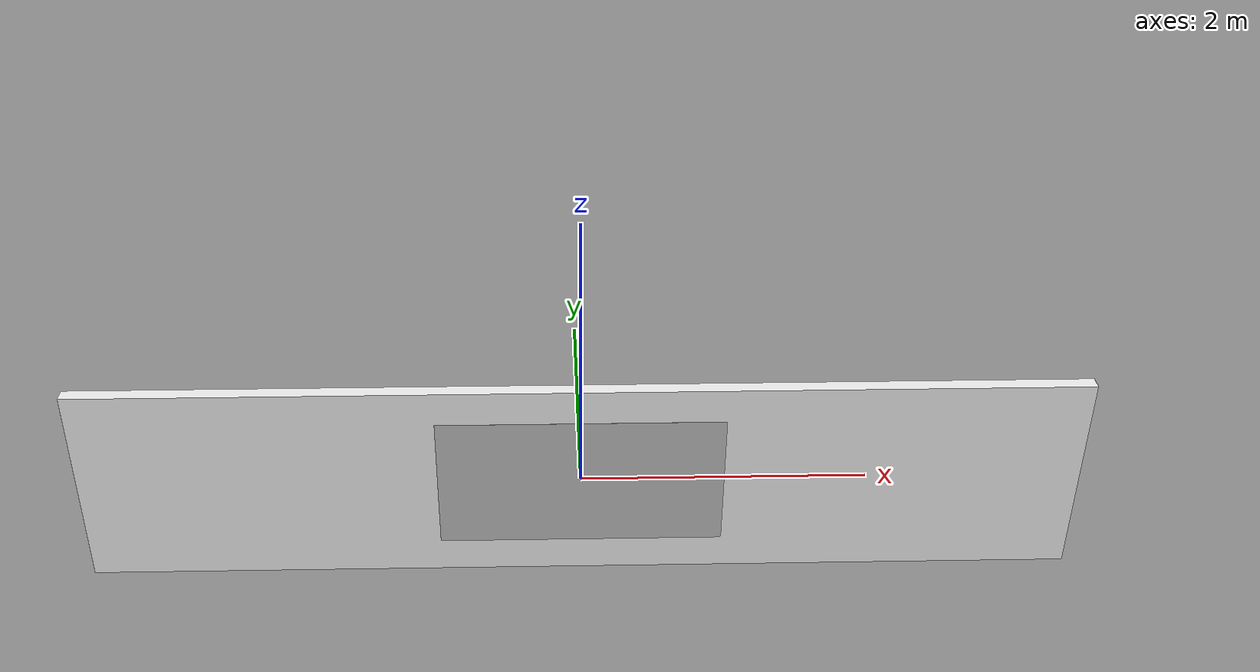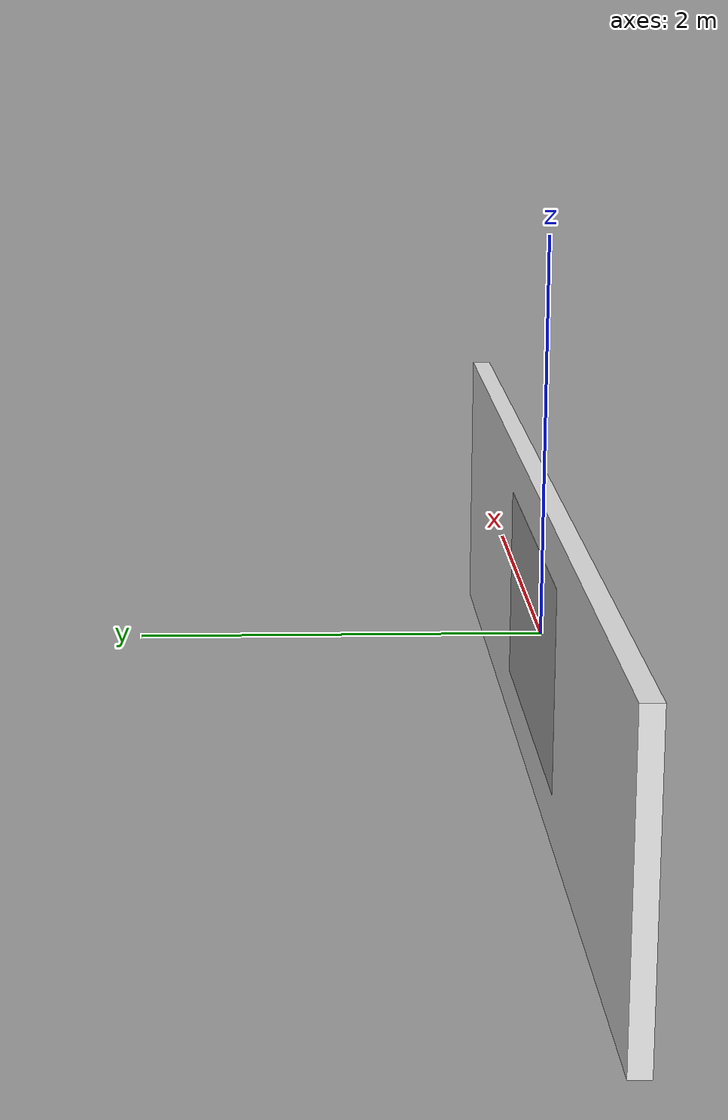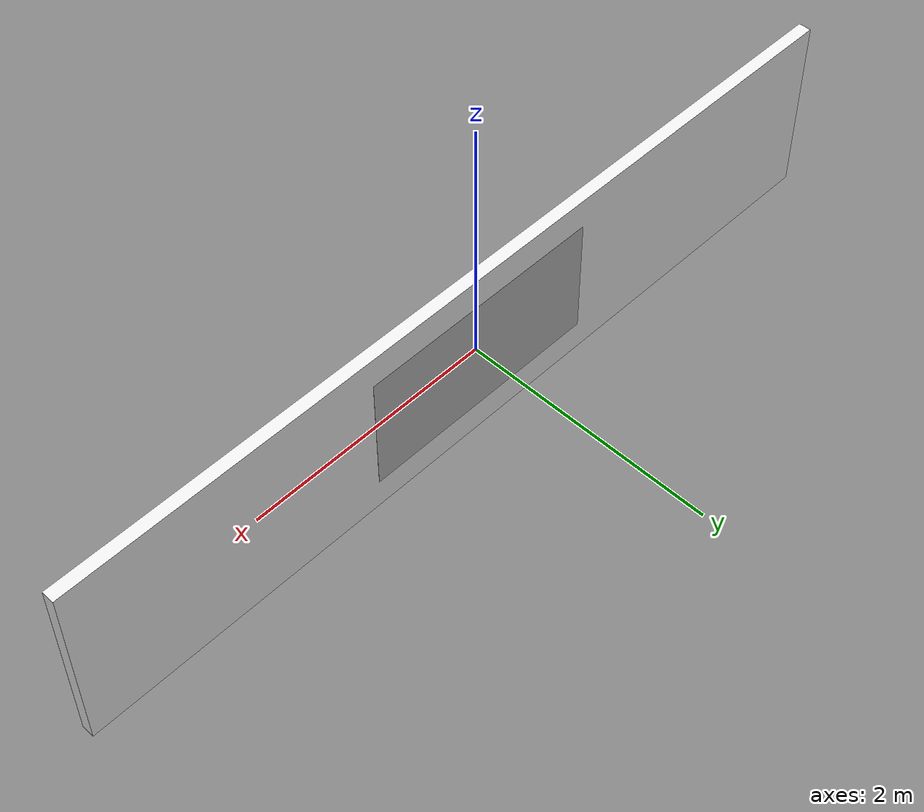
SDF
<?xml version="1.0"?>
<sdf version="1.6">
  <model name="parede_branca_logo_curta">
    <static>true</static>
    <link name="link">

      <collision name="collision">
        <geometry><box><size>7.0 0.1 1.5</size></box></geometry>
      </collision>

      <visual name="parede_visual">
        <geometry><box><size>7.0 0.1 1.5</size></box></geometry>
        <material>
          <script>
            <uri>file://media/materials/scripts/gazebo.material</uri>
            <name>Gazebo/White</name>
          </script>
        </material>
      </visual>

      <visual name="logo_visual_dentro">
        <pose>0 -0.051 0 0 0 0</pose>
        <geometry><box><size>2.0 0.001 1.0</size></box></geometry>
        <material>
          <script>
            <uri>model://parede_branca_logo_curta/materials/scripts</uri>
            <uri>model://parede_branca_logo_curta/materials/textures</uri>
            <name>ParedeLogo/Mat</name>
          </script>
        </material>
      </visual>

      <visual name="logo_visual_fora">
        <pose>0 0.051 0 0 0 0</pose>
        <geometry><box><size>2.0 0.001 1.0</size></box></geometry>
        <material>
          <script>
            <uri>model://parede_branca_logo_curta/materials/scripts</uri>
            <uri>model://parede_branca_logo_curta/materials/textures</uri>
            <name>ParedeLogo/Mat</name>
          </script>
        </material>
      </visual>
    </link>
  </model>
</sdf>
